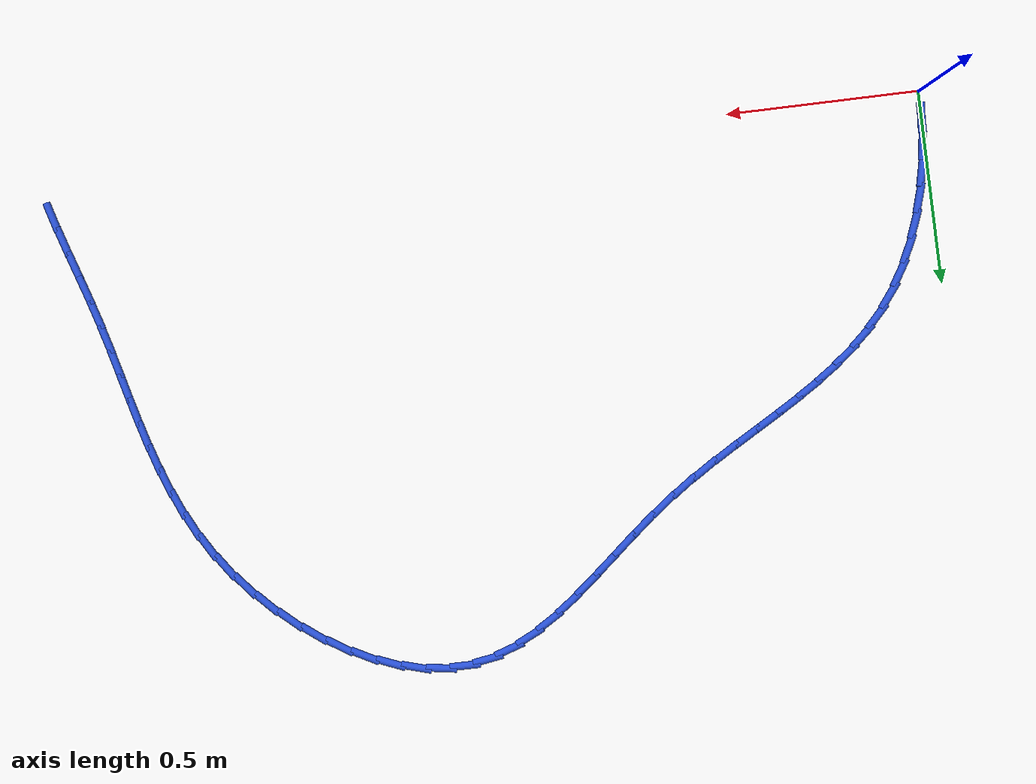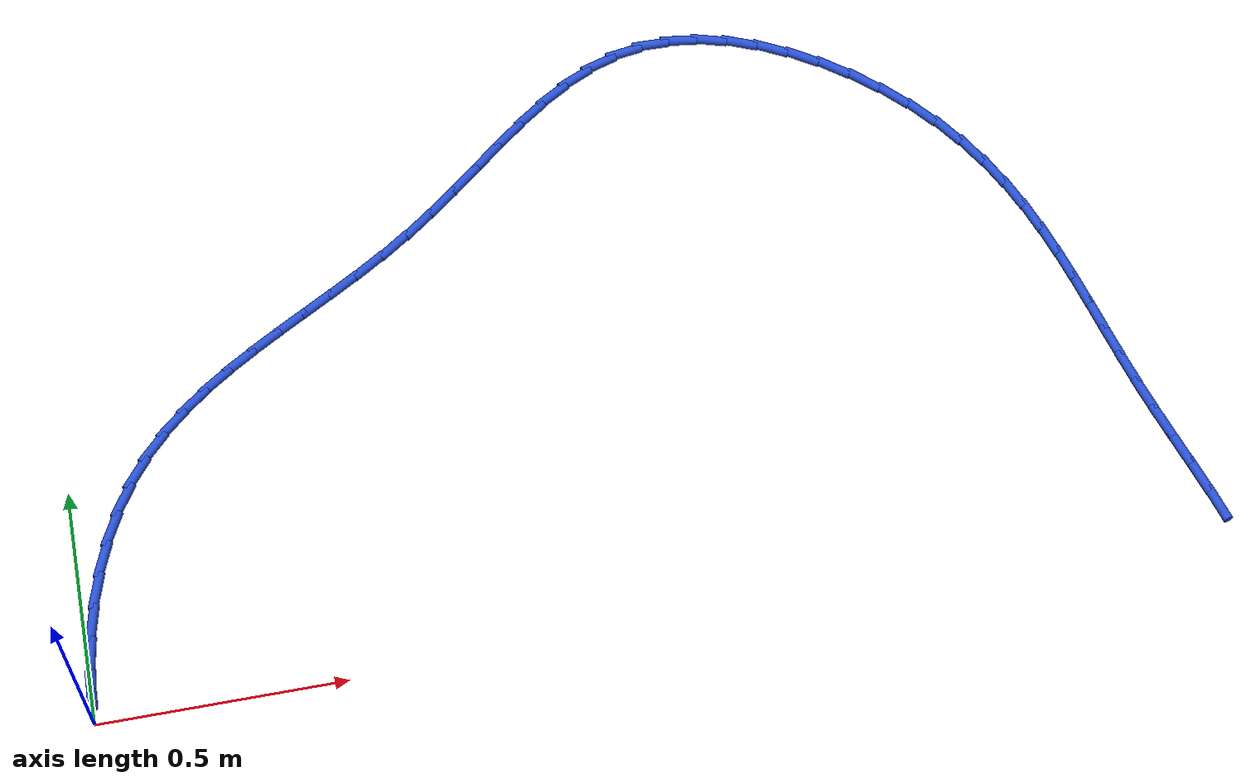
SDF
<sdf version="1.6">
 <world name="default">
  <model name="ground_plane">
   <static>1</static>
   <link name="link">
    <collision name="collision">
     <geometry><plane><normal>0 0 1</normal><size>100 100</size></plane></geometry>
     <surface><friction><ode><mu>100</mu><mu2>50</mu2></ode></friction></surface>
    </collision>
    <visual name="visual">
     <cast_shadows>0</cast_shadows>
     <geometry><plane><normal>0 0 1</normal><size>100 100</size></plane></geometry>
     <material>
      <script><uri>file://media/materials/scripts/gazebo.material</uri><name>Gazebo/WhiteGlow</name></script>
     </material>
    </visual>
   </link>
  </model>
  <model name="line">
   <link name="link_1">
    <pose>0.001662995730859986 0.06965200031566253 0.01 0 1.57 1.4836001341838194</pose>
    <collision name="collision">
     <geometry><cylinder><radius>0.01</radius><length>0.08</length></cylinder></geometry>
    </collision>
    <visual name="visual">
     <material>
      <script><name>Gazebo/Blue</name><uri>file://media/materials/scripts/gazebo.material</uri></script>
     </material>
     <geometry><cylinder><radius>0.01</radius><length>0.08</length></cylinder></geometry>
    </visual>
   </link>
   <link name="link_2">
    <pose>0.007734222374995698 0.13910264706551193 0.01 0 1.57 1.4182165275957728</pose>
    <collision name="collision">
     <geometry><cylinder><radius>0.01</radius><length>0.08</length></cylinder></geometry>
    </collision>
    <visual name="visual">
     <material>
      <script><name>Gazebo/Blue</name><uri>file://media/materials/scripts/gazebo.material</uri></script>
     </material>
     <geometry><cylinder><radius>0.01</radius><length>0.08</length></cylinder></geometry>
    </visual>
   </link>
   <link name="link_3">
    <pose>0.018285318448250057 0.20771651448674344 0.01 0 1.57 1.3495424177789186</pose>
    <collision name="collision">
     <geometry><cylinder><radius>0.01</radius><length>0.08</length></cylinder></geometry>
    </collision>
    <visual name="visual">
     <material>
      <script><name>Gazebo/Blue</name><uri>file://media/materials/scripts/gazebo.material</uri></script>
     </material>
     <geometry><cylinder><radius>0.01</radius><length>0.08</length></cylinder></geometry>
    </visual>
   </link>
   <link name="link_4">
    <pose>0.03338792246646596 0.2748581768165523 0.01 0 1.57 1.2763016882441596</pose>
    <collision name="collision">
     <geometry><cylinder><radius>0.01</radius><length>0.08</length></cylinder></geometry>
    </collision>
    <visual name="visual">
     <material>
      <script><name>Gazebo/Blue</name><uri>file://media/materials/scripts/gazebo.material</uri></script>
     </material>
     <geometry><cylinder><radius>0.01</radius><length>0.08</length></cylinder></geometry>
    </visual>
   </link>
   <link name="link_5">
    <pose>0.05311367294548626 0.3398922082921335 0.01 0 1.57 1.1971710521229257</pose>
    <collision name="collision">
     <geometry><cylinder><radius>0.01</radius><length>0.08</length></cylinder></geometry>
    </collision>
    <visual name="visual">
     <material>
      <script><name>Gazebo/Blue</name><uri>file://media/materials/scripts/gazebo.material</uri></script>
     </material>
     <geometry><cylinder><radius>0.01</radius><length>0.08</length></cylinder></geometry>
    </visual>
   </link>
   <link name="link_6">
    <pose>0.0775342084011538 0.40218318315068236 0.01 0 1.57 1.110812176413138</pose>
    <collision name="collision">
     <geometry><cylinder><radius>0.01</radius><length>0.08</length></cylinder></geometry>
    </collision>
    <visual name="visual">
     <material>
      <script><name>Gazebo/Blue</name><uri>file://media/materials/scripts/gazebo.material</uri></script>
     </material>
     <geometry><cylinder><radius>0.01</radius><length>0.08</length></cylinder></geometry>
    </visual>
   </link>
   <link name="link_7">
    <pose>0.10672116734931147 0.46109567562939413 0.01 0 1.57 1.015959839873598</pose>
    <collision name="collision">
     <geometry><cylinder><radius>0.01</radius><length>0.08</length></cylinder></geometry>
    </collision>
    <visual name="visual">
     <material>
      <script><name>Gazebo/Blue</name><uri>file://media/materials/scripts/gazebo.material</uri></script>
     </material>
     <geometry><cylinder><radius>0.01</radius><length>0.08</length></cylinder></geometry>
    </visual>
   </link>
   <link name="link_8">
    <pose>0.14074618830580218 0.5159942599654637 0.01 0 1.57 0.912096998634463</pose>
    <collision name="collision">
     <geometry><cylinder><radius>0.01</radius><length>0.08</length></cylinder></geometry>
    </collision>
    <visual name="visual">
     <material>
      <script><name>Gazebo/Blue</name><uri>file://media/materials/scripts/gazebo.material</uri></script>
     </material>
     <geometry><cylinder><radius>0.01</radius><length>0.08</length></cylinder></geometry>
    </visual>
   </link>
   <link name="link_9">
    <pose>0.17966546163314467 0.5662760714074127 0.01 0 1.57 0.809933966430526</pose>
    <collision name="collision">
     <geometry><cylinder><radius>0.01</radius><length>0.08</length></cylinder></geometry>
    </collision>
    <visual name="visual">
     <material>
      <script><name>Gazebo/Blue</name><uri>file://media/materials/scripts/gazebo.material</uri></script>
     </material>
     <geometry><cylinder><radius>0.01</radius><length>0.08</length></cylinder></geometry>
    </visual>
   </link>
   <link name="link_10">
    <pose>0.22321381061022613 0.6120156101308566 0.01 0 1.57 0.7218440498135631</pose>
    <collision name="collision">
     <geometry><cylinder><radius>0.01</radius><length>0.08</length></cylinder></geometry>
    </collision>
    <visual name="visual">
     <material>
      <script><name>Gazebo/Blue</name><uri>file://media/materials/scripts/gazebo.material</uri></script>
     </material>
     <geometry><cylinder><radius>0.01</radius><length>0.08</length></cylinder></geometry>
    </visual>
   </link>
   <link name="link_11">
    <pose>0.27082248750040483 0.6539272313845478 0.01 0 1.57 0.6498201715762805</pose>
    <collision name="collision">
     <geometry><cylinder><radius>0.01</radius><length>0.08</length></cylinder></geometry>
    </collision>
    <visual name="visual">
     <material>
      <script><name>Gazebo/Blue</name><uri>file://media/materials/scripts/gazebo.material</uri></script>
     </material>
     <geometry><cylinder><radius>0.01</radius><length>0.08</length></cylinder></geometry>
    </visual>
   </link>
   <link name="link_12">
    <pose>0.32191085924877383 0.6927503418246508 0.01 0 1.57 0.5941629692562016</pose>
    <collision name="collision">
     <geometry><cylinder><radius>0.01</radius><length>0.08</length></cylinder></geometry>
    </collision>
    <visual name="visual">
     <material>
      <script><name>Gazebo/Blue</name><uri>file://media/materials/scripts/gazebo.material</uri></script>
     </material>
     <geometry><cylinder><radius>0.01</radius><length>0.08</length></cylinder></geometry>
    </visual>
   </link>
   <link name="link_13">
    <pose>0.3758982928004255 0.7292243481073298 0.01 0 1.57 0.5544140431625904</pose>
    <collision name="collision">
     <geometry><cylinder><radius>0.01</radius><length>0.08</length></cylinder></geometry>
    </collision>
    <visual name="visual">
     <material>
      <script><name>Gazebo/Blue</name><uri>file://media/materials/scripts/gazebo.material</uri></script>
     </material>
     <geometry><cylinder><radius>0.01</radius><length>0.08</length></cylinder></geometry>
    </visual>
   </link>
   <link name="link_14">
    <pose>0.43220415510045246 0.764088656888749 0.01 0 1.57 0.5298108196067688</pose>
    <collision name="collision">
     <geometry><cylinder><radius>0.01</radius><length>0.08</length></cylinder></geometry>
    </collision>
    <visual name="visual">
     <material>
      <script><name>Gazebo/Blue</name><uri>file://media/materials/scripts/gazebo.material</uri></script>
     </material>
     <geometry><cylinder><radius>0.01</radius><length>0.08</length></cylinder></geometry>
    </visual>
   </link>
   <link name="link_15">
    <pose>0.4902478130939474 0.7980826748250724 0.01 0 1.57 0.5195801418814135</pose>
    <collision name="collision">
     <geometry><cylinder><radius>0.01</radius><length>0.08</length></cylinder></geometry>
    </collision>
    <visual name="visual">
     <material>
      <script><name>Gazebo/Blue</name><uri>file://media/materials/scripts/gazebo.material</uri></script>
     </material>
     <geometry><cylinder><radius>0.01</radius><length>0.08</length></cylinder></geometry>
    </visual>
   </link>
   <link name="link_16">
    <pose>0.5494486337260032 0.831945808572465 0.01 0 1.57 0.5230865612354484</pose>
    <collision name="collision">
     <geometry><cylinder><radius>0.01</radius><length>0.08</length></cylinder></geometry>
    </collision>
    <visual name="visual">
     <material>
      <script><name>Gazebo/Blue</name><uri>file://media/materials/scripts/gazebo.material</uri></script>
     </material>
     <geometry><cylinder><radius>0.01</radius><length>0.08</length></cylinder></geometry>
    </visual>
   </link>
   <link name="link_17">
    <pose>0.609225983941712 0.8664174647870901 0.01 0 1.57 0.5398735985248873</pose>
    <collision name="collision">
     <geometry><cylinder><radius>0.01</radius><length>0.08</length></cylinder></geometry>
    </collision>
    <visual name="visual">
     <material>
      <script><name>Gazebo/Blue</name><uri>file://media/materials/scripts/gazebo.material</uri></script>
     </material>
     <geometry><cylinder><radius>0.01</radius><length>0.08</length></cylinder></geometry>
    </visual>
   </link>
   <link name="link_18">
    <pose>0.6689992306861667 0.9022370501251127 0.01 0 1.57 0.5696280492293765</pose>
    <collision name="collision">
     <geometry><cylinder><radius>0.01</radius><length>0.08</length></cylinder></geometry>
    </collision>
    <visual name="visual">
     <material>
      <script><name>Gazebo/Blue</name><uri>file://media/materials/scripts/gazebo.material</uri></script>
     </material>
     <geometry><cylinder><radius>0.01</radius><length>0.08</length></cylinder></geometry>
    </visual>
   </link>
   <link name="link_19">
    <pose>0.7281877409044601 0.9401439712426964 0.01 0 1.57 0.6120612553127955</pose>
    <collision name="collision">
     <geometry><cylinder><radius>0.01</radius><length>0.08</length></cylinder></geometry>
    </collision>
    <visual name="visual">
     <material>
      <script><name>Gazebo/Blue</name><uri>file://media/materials/scripts/gazebo.material</uri></script>
     </material>
     <geometry><cylinder><radius>0.01</radius><length>0.08</length></cylinder></geometry>
    </visual>
   </link>
   <link name="link_20">
    <pose>0.786211543786512 0.9808761845344435 0.01 0 1.57 0.658538953905491</pose>
    <collision name="collision">
     <geometry><cylinder><radius>0.01</radius><length>0.08</length></cylinder></geometry>
    </collision>
    <visual name="visual">
     <material>
      <script><name>Gazebo/Blue</name><uri>file://media/materials/scripts/gazebo.material</uri></script>
     </material>
     <geometry><cylinder><radius>0.01</radius><length>0.08</length></cylinder></geometry>
    </visual>
   </link>
   <link name="link_21">
    <pose>0.8427432467558091 1.024618520891409 0.01 0 1.57 0.6886535286277427</pose>
    <collision name="collision">
     <geometry><cylinder><radius>0.01</radius><length>0.08</length></cylinder></geometry>
    </collision>
    <visual name="visual">
     <material>
      <script><name>Gazebo/Blue</name><uri>file://media/materials/scripts/gazebo.material</uri></script>
     </material>
     <geometry><cylinder><radius>0.01</radius><length>0.08</length></cylinder></geometry>
    </visual>
   </link>
   <link name="link_22">
    <pose>0.8980877323119415 1.0701711809262988 0.01 0 1.57 0.6999487517140253</pose>
    <collision name="collision">
     <geometry><cylinder><radius>0.01</radius><length>0.08</length></cylinder></geometry>
    </collision>
    <visual name="visual">
     <material>
      <script><name>Gazebo/Blue</name><uri>file://media/materials/scripts/gazebo.material</uri></script>
     </material>
     <geometry><cylinder><radius>0.01</radius><length>0.08</length></cylinder></geometry>
    </visual>
   </link>
   <link name="link_23">
    <pose>0.9526472138165325 1.1161212186900062 0.01 0 1.57 0.692415993022495</pose>
    <collision name="collision">
     <geometry><cylinder><radius>0.01</radius><length>0.08</length></cylinder></geometry>
    </collision>
    <visual name="visual">
     <material>
      <script><name>Gazebo/Blue</name><uri>file://media/materials/scripts/gazebo.material</uri></script>
     </material>
     <geometry><cylinder><radius>0.01</radius><length>0.08</length></cylinder></geometry>
    </visual>
   </link>
   <link name="link_24">
    <pose>1.0068239046312053 1.1610556882334235 0.01 0 1.57 0.6650935437307557</pose>
    <collision name="collision">
     <geometry><cylinder><radius>0.01</radius><length>0.08</length></cylinder></geometry>
    </collision>
    <visual name="visual">
     <material>
      <script><name>Gazebo/Blue</name><uri>file://media/materials/scripts/gazebo.material</uri></script>
     </material>
     <geometry><cylinder><radius>0.01</radius><length>0.08</length></cylinder></geometry>
    </visual>
   </link>
   <link name="link_25">
    <pose>1.0610200181175844 1.203561643607446 0.01 0 1.57 0.6160155241639755</pose>
    <collision name="collision">
     <geometry><cylinder><radius>0.01</radius><length>0.08</length></cylinder></geometry>
    </collision>
    <visual name="visual">
     <material>
      <script><name>Gazebo/Blue</name><uri>file://media/materials/scripts/gazebo.material</uri></script>
     </material>
     <geometry><cylinder><radius>0.01</radius><length>0.08</length></cylinder></geometry>
    </visual>
   </link>
   <link name="link_26">
    <pose>1.1156377676372928 1.242226138862966 0.01 0 1.57 0.5423420618503455</pose>
    <collision name="collision">
     <geometry><cylinder><radius>0.01</radius><length>0.08</length></cylinder></geometry>
    </collision>
    <visual name="visual">
     <material>
      <script><name>Gazebo/Blue</name><uri>file://media/materials/scripts/gazebo.material</uri></script>
     </material>
     <geometry><cylinder><radius>0.01</radius><length>0.08</length></cylinder></geometry>
    </visual>
   </link>
   <link name="link_27">
    <pose>1.1710793665519545 1.2756362280508782 0.01 0 1.57 0.44093427278790065</pose>
    <collision name="collision">
     <geometry><cylinder><radius>0.01</radius><length>0.08</length></cylinder></geometry>
    </collision>
    <visual name="visual">
     <material>
      <script><name>Gazebo/Blue</name><uri>file://media/materials/scripts/gazebo.material</uri></script>
     </material>
     <geometry><cylinder><radius>0.01</radius><length>0.08</length></cylinder></geometry>
    </visual>
   </link>
   <link name="link_28">
    <pose>1.2277470282231926 1.3023789652220745 0.01 0 1.57 0.3098233640755254</pose>
    <collision name="collision">
     <geometry><cylinder><radius>0.01</radius><length>0.08</length></cylinder></geometry>
    </collision>
    <visual name="visual">
     <material>
      <script><name>Gazebo/Blue</name><uri>file://media/materials/scripts/gazebo.material</uri></script>
     </material>
     <geometry><cylinder><radius>0.01</radius><length>0.08</length></cylinder></geometry>
    </visual>
   </link>
   <link name="link_29">
    <pose>1.286042966012631 1.3210414044274494 0.01 0 1.57 0.15104322075602933</pose>
    <collision name="collision">
     <geometry><cylinder><radius>0.01</radius><length>0.08</length></cylinder></geometry>
    </collision>
    <visual name="visual">
     <material>
      <script><name>Gazebo/Blue</name><uri>file://media/materials/scripts/gazebo.material</uri></script>
     </material>
     <geometry><cylinder><radius>0.01</radius><length>0.08</length></cylinder></geometry>
    </visual>
   </link>
   <link name="link_30">
    <pose>1.346363151856704 1.3302222836868736 0.01 0 1.57 -0.014383568267934048</pose>
    <collision name="collision">
     <geometry><cylinder><radius>0.01</radius><length>0.08</length></cylinder></geometry>
    </collision>
    <visual name="visual">
     <material>
      <script><name>Gazebo/Blue</name><uri>file://media/materials/scripts/gazebo.material</uri></script>
     </material>
     <geometry><cylinder><radius>0.01</radius><length>0.08</length></cylinder></geometry>
    </visual>
   </link>
   <link name="link_31">
    <pose>1.4086731951687057 1.3293259811131373 0.01 0 1.57 -0.15997296346335427</pose>
    <collision name="collision">
     <geometry><cylinder><radius>0.01</radius><length>0.08</length></cylinder></geometry>
    </collision>
    <visual name="visual">
     <material>
      <script><name>Gazebo/Blue</name><uri>file://media/materials/scripts/gazebo.material</uri></script>
     </material>
     <geometry><cylinder><radius>0.01</radius><length>0.08</length></cylinder></geometry>
    </visual>
   </link>
   <link name="link_32">
    <pose>1.4722373611248771 1.319069793593149 0.01 0 1.57 -0.2853202912599814</pose>
    <collision name="collision">
     <geometry><cylinder><radius>0.01</radius><length>0.08</length></cylinder></geometry>
    </collision>
    <visual name="visual">
     <material>
      <script><name>Gazebo/Blue</name><uri>file://media/materials/scripts/gazebo.material</uri></script>
     </material>
     <geometry><cylinder><radius>0.01</radius><length>0.08</length></cylinder></geometry>
    </visual>
   </link>
   <link name="link_33">
    <pose>1.5362553914932027 1.3002918060514066 0.01 0 1.57 -0.39387882618972003</pose>
    <collision name="collision">
     <geometry><cylinder><radius>0.01</radius><length>0.08</length></cylinder></geometry>
    </collision>
    <visual name="visual">
     <material>
      <script><name>Gazebo/Blue</name><uri>file://media/materials/scripts/gazebo.material</uri></script>
     </material>
     <geometry><cylinder><radius>0.01</radius><length>0.08</length></cylinder></geometry>
    </visual>
   </link>
   <link name="link_34">
    <pose>1.5999270280416678 1.2738301034124078 0.01 0 1.57 -0.4894675252280871</pose>
    <collision name="collision">
     <geometry><cylinder><radius>0.01</radius><length>0.08</length></cylinder></geometry>
    </collision>
    <visual name="visual">
     <material>
      <script><name>Gazebo/Blue</name><uri>file://media/materials/scripts/gazebo.material</uri></script>
     </material>
     <geometry><cylinder><radius>0.01</radius><length>0.08</length></cylinder></geometry>
    </visual>
   </link>
   <link name="link_35">
    <pose>1.6624520125382583 1.240522770600651 0.01 0 1.57 -0.5756685187655406</pose>
    <collision name="collision">
     <geometry><cylinder><radius>0.01</radius><length>0.08</length></cylinder></geometry>
    </collision>
    <visual name="visual">
     <material>
      <script><name>Gazebo/Blue</name><uri>file://media/materials/scripts/gazebo.material</uri></script>
     </material>
     <geometry><cylinder><radius>0.01</radius><length>0.08</length></cylinder></geometry>
    </visual>
   </link>
   <link name="link_36">
    <pose>1.7230300867509596 1.2012078925406335 0.01 0 1.57 -0.6556850483532216</pose>
    <collision name="collision">
     <geometry><cylinder><radius>0.01</radius><length>0.08</length></cylinder></geometry>
    </collision>
    <visual name="visual">
     <material>
      <script><name>Gazebo/Blue</name><uri>file://media/materials/scripts/gazebo.material</uri></script>
     </material>
     <geometry><cylinder><radius>0.01</radius><length>0.08</length></cylinder></geometry>
    </visual>
   </link>
   <link name="link_37">
    <pose>1.780860992447757 1.1567235541568535 0.01 0 1.57 -0.7324137759522356</pose>
    <collision name="collision">
     <geometry><cylinder><radius>0.01</radius><length>0.08</length></cylinder></geometry>
    </collision>
    <visual name="visual">
     <material>
      <script><name>Gazebo/Blue</name><uri>file://media/materials/scripts/gazebo.material</uri></script>
     </material>
     <geometry><cylinder><radius>0.01</radius><length>0.08</length></cylinder></geometry>
    </visual>
   </link>
   <link name="link_38">
    <pose>1.8351444713966354 1.107907840373809 0.01 0 1.57 -0.8086050577925653</pose>
    <collision name="collision">
     <geometry><cylinder><radius>0.01</radius><length>0.08</length></cylinder></geometry>
    </collision>
    <visual name="visual">
     <material>
      <script><name>Gazebo/Blue</name><uri>file://media/materials/scripts/gazebo.material</uri></script>
     </material>
     <geometry><cylinder><radius>0.01</radius><length>0.08</length></cylinder></geometry>
    </visual>
   </link>
   <link name="link_39">
    <pose>1.8850802653655812 1.055598836115998 0.01 0 1.57 -0.8870629787673939</pose>
    <collision name="collision">
     <geometry><cylinder><radius>0.01</radius><length>0.08</length></cylinder></geometry>
    </collision>
    <visual name="visual">
     <material>
      <script><name>Gazebo/Blue</name><uri>file://media/materials/scripts/gazebo.material</uri></script>
     </material>
     <geometry><cylinder><radius>0.01</radius><length>0.08</length></cylinder></geometry>
    </visual>
   </link>
   <link name="link_40">
    <pose>1.929868116122578 1.0006346263079176 0.01 0 1.57 -0.9697017245897118</pose>
    <collision name="collision">
     <geometry><cylinder><radius>0.01</radius><length>0.08</length></cylinder></geometry>
    </collision>
    <visual name="visual">
     <material>
      <script><name>Gazebo/Blue</name><uri>file://media/materials/scripts/gazebo.material</uri></script>
     </material>
     <geometry><cylinder><radius>0.01</radius><length>0.08</length></cylinder></geometry>
    </visual>
   </link>
   <link name="link_41">
    <pose>1.9688487307564688 0.9437904375185101 0.01 0 1.57 -1.0498693001249186</pose>
    <collision name="collision">
     <geometry><cylinder><radius>0.01</radius><length>0.08</length></cylinder></geometry>
    </collision>
    <visual name="visual">
     <material>
      <script><name>Gazebo/Blue</name><uri>file://media/materials/scripts/gazebo.material</uri></script>
     </material>
     <geometry><cylinder><radius>0.01</radius><length>0.08</length></cylinder></geometry>
    </visual>
   </link>
   <link name="link_42">
    <pose>2.002352734332446 0.8854000784151174 0.01 0 1.57 -1.122161200029812</pose>
    <collision name="collision">
     <geometry><cylinder><radius>0.01</radius><length>0.08</length></cylinder></geometry>
    </collision>
    <visual name="visual">
     <material>
      <script><name>Gazebo/Blue</name><uri>file://media/materials/scripts/gazebo.material</uri></script>
     </material>
     <geometry><cylinder><radius>0.01</radius><length>0.08</length></cylinder></geometry>
    </visual>
   </link>
   <link name="link_43">
    <pose>2.031134909749527 0.8256082199128408 0.01 0 1.57 -1.1846968117944017</pose>
    <collision name="collision">
     <geometry><cylinder><radius>0.01</radius><length>0.08</length></cylinder></geometry>
    </collision>
    <visual name="visual">
     <material>
      <script><name>Gazebo/Blue</name><uri>file://media/materials/scripts/gazebo.material</uri></script>
     </material>
     <geometry><cylinder><radius>0.01</radius><length>0.08</length></cylinder></geometry>
    </visual>
   </link>
   <link name="link_44">
    <pose>2.0559516561066293 0.7645588122412433 0.01 0 1.57 -1.2362632668146638</pose>
    <collision name="collision">
     <geometry><cylinder><radius>0.01</radius><length>0.08</length></cylinder></geometry>
    </collision>
    <visual name="visual">
     <material>
      <script><name>Gazebo/Blue</name><uri>file://media/materials/scripts/gazebo.material</uri></script>
     </material>
     <geometry><cylinder><radius>0.01</radius><length>0.08</length></cylinder></geometry>
    </visual>
   </link>
   <link name="link_45">
    <pose>2.077559372502671 0.7023958056298887 0.01 0 1.57 -1.2762139400366497</pose>
    <collision name="collision">
     <geometry><cylinder><radius>0.01</radius><length>0.08</length></cylinder></geometry>
    </collision>
    <visual name="visual">
     <material>
      <script><name>Gazebo/Blue</name><uri>file://media/materials/scripts/gazebo.material</uri></script>
     </material>
     <geometry><cylinder><radius>0.01</radius><length>0.08</length></cylinder></geometry>
    </visual>
   </link>
   <link name="link_46">
    <pose>2.0967144580365673 0.6392631503083399 0.01 0 1.57 -1.3043163032280307</pose>
    <collision name="collision">
     <geometry><cylinder><radius>0.01</radius><length>0.08</length></cylinder></geometry>
    </collision>
    <visual name="visual">
     <material>
      <script><name>Gazebo/Blue</name><uri>file://media/materials/scripts/gazebo.material</uri></script>
     </material>
     <geometry><cylinder><radius>0.01</radius><length>0.08</length></cylinder></geometry>
    </visual>
   </link>
   <link name="link_47">
    <pose>2.114173311807238 0.5753047965061604 0.01 0 1.57 -1.3205974647895078</pose>
    <collision name="collision">
     <geometry><cylinder><radius>0.01</radius><length>0.08</length></cylinder></geometry>
    </collision>
    <visual name="visual">
     <material>
      <script><name>Gazebo/Blue</name><uri>file://media/materials/scripts/gazebo.material</uri></script>
     </material>
     <geometry><cylinder><radius>0.01</radius><length>0.08</length></cylinder></geometry>
    </visual>
   </link>
   <link name="link_48">
    <pose>2.1306923329135987 0.5106646944529134 0.01 0 1.57 -1.325224082224038</pose>
    <collision name="collision">
     <geometry><cylinder><radius>0.01</radius><length>0.08</length></cylinder></geometry>
    </collision>
    <visual name="visual">
     <material>
      <script><name>Gazebo/Blue</name><uri>file://media/materials/scripts/gazebo.material</uri></script>
     </material>
     <geometry><cylinder><radius>0.01</radius><length>0.08</length></cylinder></geometry>
    </visual>
   </link>
   <link name="link_49">
    <pose>2.147027920454568 0.4454867943781624 0.01 0 1.57 -1.3184306298974844</pose>
    <collision name="collision">
     <geometry><cylinder><radius>0.01</radius><length>0.08</length></cylinder></geometry>
    </collision>
    <visual name="visual">
     <material>
      <script><name>Gazebo/Blue</name><uri>file://media/materials/scripts/gazebo.material</uri></script>
     </material>
     <geometry><cylinder><radius>0.01</radius><length>0.08</length></cylinder></geometry>
    </visual>
   </link>
   <link name="link_50">
    <pose>2.1639364735290627 0.3799150465114707 0.01 0 1.57 -1.300507510122738</pose>
    <collision name="collision">
     <geometry><cylinder><radius>0.01</radius><length>0.08</length></cylinder></geometry>
    </collision>
    <visual name="visual">
     <material>
      <script><name>Gazebo/Blue</name><uri>file://media/materials/scripts/gazebo.material</uri></script>
     </material>
     <geometry><cylinder><radius>0.01</radius><length>0.08</length></cylinder></geometry>
    </visual>
   </link>
   <link name="link_51">
    <pose>2.1821736254878075 0.3140933724166994 0.01 0 1.57 -1.2775336966465978</pose>
    <collision name="collision">
     <geometry><cylinder><radius>0.01</radius><length>0.08</length></cylinder></geometry>
    </collision>
    <visual name="visual">
     <material>
      <script><name>Gazebo/Blue</name><uri>file://media/materials/scripts/gazebo.material</uri></script>
     </material>
     <geometry><cylinder><radius>0.01</radius><length>0.08</length></cylinder></geometry>
    </visual>
   </link>
   <link name="link_52">
    <pose>2.202086388197667 0.2481503969559399 0.01 0 1.57 -1.2646355034382335</pose>
    <collision name="collision">
     <geometry><cylinder><radius>0.01</radius><length>0.08</length></cylinder></geometry>
    </collision>
    <visual name="visual">
     <material>
      <script><name>Gazebo/Blue</name><uri>file://media/materials/scripts/gazebo.material</uri></script>
     </material>
     <geometry><cylinder><radius>0.01</radius><length>0.08</length></cylinder></geometry>
    </visual>
   </link>
   <link name="link_53">
    <pose>2.2229414036372472 0.18217430145947114 0.01 0 1.57 -1.263977677471158</pose>
    <collision name="collision">
     <geometry><cylinder><radius>0.01</radius><length>0.08</length></cylinder></geometry>
    </collision>
    <visual name="visual">
     <material>
      <script><name>Gazebo/Blue</name><uri>file://media/materials/scripts/gazebo.material</uri></script>
     </material>
     <geometry><cylinder><radius>0.01</radius><length>0.08</length></cylinder></geometry>
    </visual>
   </link>
   <link name="link_54">
    <pose>2.2438288149812142 0.11624666004362635 0.01 0 1.57 -1.2755698537699989</pose>
    <collision name="collision">
     <geometry><cylinder><radius>0.01</radius><length>0.08</length></cylinder></geometry>
    </collision>
    <visual name="visual">
     <material>
      <script><name>Gazebo/Blue</name><uri>file://media/materials/scripts/gazebo.material</uri></script>
     </material>
     <geometry><cylinder><radius>0.01</radius><length>0.08</length></cylinder></geometry>
    </visual>
   </link>
   <link name="link_55">
    <pose>2.2638387654042296 0.05044904682473877 0.01 0 1.57 -1.299788663369346</pose>
    <collision name="collision">
     <geometry><cylinder><radius>0.01</radius><length>0.08</length></cylinder></geometry>
    </collision>
    <visual name="visual">
     <material>
      <script><name>Gazebo/Blue</name><uri>file://media/materials/scripts/gazebo.material</uri></script>
     </material>
     <geometry><cylinder><radius>0.01</radius><length>0.08</length></cylinder></geometry>
    </visual>
   </link>
   <link name="link_111">
    <pose>0.0016535081392424454 0.0697031991531507 0.01 0 1.57 1.5470786481325705</pose>
    <collision name="collision">
     <geometry><cylinder><radius>0.01</radius><length>0.08</length></cylinder></geometry>
    </collision>
    <visual name="visual">
     <material>
      <script><name>Gazebo/Blue</name><uri>file://media/materials/scripts/gazebo.material</uri></script>
     </material>
     <geometry><cylinder><radius>0.01</radius><length>0.08</length></cylinder></geometry>
    </visual>
   </link>
  </model>
 </world>
</sdf>
